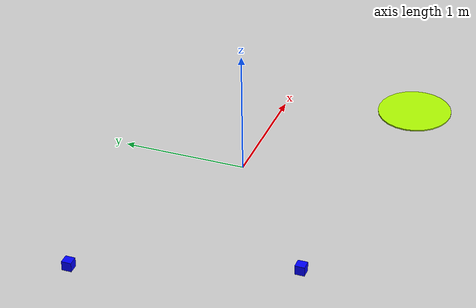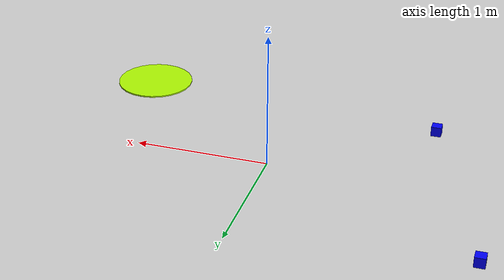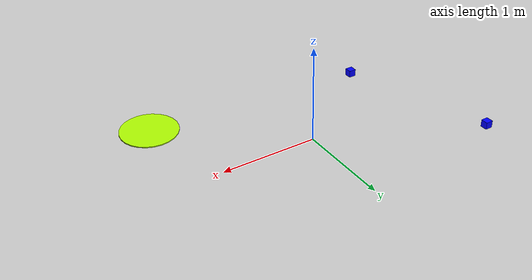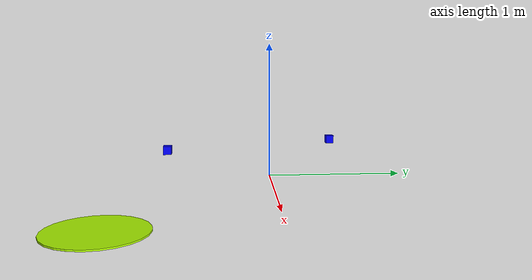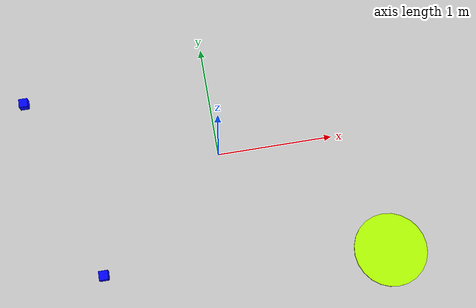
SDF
<?xml version='1.0'?>
<sdf version='1.7'>
  <model name='fg3'>
    <link name='link_0'>
      <inertial>
        <mass>1</mass>
        <inertia>
          <ixx>0.166667</ixx>
          <ixy>0</ixy>
          <ixz>0</ixz>
          <iyy>0.166667</iyy>
          <iyz>0</iyz>
          <izz>0.166667</izz>
        </inertia>
        <pose>0 0 0 0 -0 0</pose>
      </inertial>
      <pose>-1.09355 -0.868762 0.010054 0 -0 0</pose>
      <gravity>1</gravity>
      <self_collide>0</self_collide>
      <kinematic>0</kinematic>
      <enable_wind>0</enable_wind>
      <visual name='visual'>
        <pose>0 0 0 0 -0 0</pose>
        <geometry>
          <box>
            <size>0.0762 0.0762 0.0762</size>
          </box>
        </geometry>
        <material>
          <lighting>1</lighting>
          <script>
            <uri>file://media/materials/scripts/gazebo.material</uri>
            <name>Gazebo/Grey</name>
          </script>
          <shader type='pixel'>
            <normal_map>__default__</normal_map>
          </shader>
          <ambient>0 0 1 1</ambient>
          <diffuse>0 0 1 1</diffuse>
          <specular>0 0 1 1</specular>
          <emissive>0 0 0 1</emissive>
        </material>
        <transparency>0</transparency>
        <cast_shadows>1</cast_shadows>
      </visual>
      <collision name='collision'>
        <laser_retro>0</laser_retro>
        <max_contacts>10</max_contacts>
        <pose>0 0 0 0 -0 0</pose>
        <geometry>
          <box>
            <size>0.0762 0.0762 0.0762</size>
          </box>
        </geometry>
        <surface>
          <friction>
            <ode>
              <mu>1</mu>
              <mu2>1</mu2>
              <fdir1>0 0 0</fdir1>
              <slip1>0</slip1>
              <slip2>0</slip2>
            </ode>
            <torsional>
              <coefficient>1</coefficient>
              <patch_radius>0</patch_radius>
              <surface_radius>0</surface_radius>
              <use_patch_radius>1</use_patch_radius>
              <ode>
                <slip>0</slip>
              </ode>
            </torsional>
          </friction>
          <bounce>
            <restitution_coefficient>0</restitution_coefficient>
            <threshold>1e+06</threshold>
          </bounce>
          <contact>
            <collide_without_contact>0</collide_without_contact>
            <collide_without_contact_bitmask>1</collide_without_contact_bitmask>
            <collide_bitmask>1</collide_bitmask>
            <ode>
              <soft_cfm>0</soft_cfm>
              <soft_erp>0.2</soft_erp>
              <kp>1e+13</kp>
              <kd>1</kd>
              <max_vel>0.01</max_vel>
              <min_depth>0</min_depth>
            </ode>
            <bullet>
              <split_impulse>1</split_impulse>
              <split_impulse_penetration_threshold>-0.01</split_impulse_penetration_threshold>
              <soft_cfm>0</soft_cfm>
              <soft_erp>0.2</soft_erp>
              <kp>1e+13</kp>
              <kd>1</kd>
            </bullet>
          </contact>
        </surface>
      </collision>
    </link>
    <link name='link_0_clone'>
      <inertial>
        <mass>1</mass>
        <inertia>
          <ixx>0.166667</ixx>
          <ixy>0</ixy>
          <ixz>0</ixz>
          <iyy>0.166667</iyy>
          <iyz>0</iyz>
          <izz>0.166667</izz>
        </inertia>
        <pose>0 0 0 0 -0 0</pose>
      </inertial>
      <pose>-1.62214 0.742998 0.010054 0 -0 0</pose>
      <gravity>1</gravity>
      <self_collide>0</self_collide>
      <kinematic>0</kinematic>
      <enable_wind>0</enable_wind>
      <visual name='visual'>
        <pose>0 0 0 0 -0 0</pose>
        <geometry>
          <box>
            <size>0.0762 0.0762 0.0762</size>
          </box>
        </geometry>
        <material>
          <lighting>1</lighting>
          <script>
            <uri>file://media/materials/scripts/gazebo.material</uri>
            <name>Gazebo/Grey</name>
          </script>
          <shader type='pixel'>
            <normal_map>__default__</normal_map>
          </shader>
          <ambient>0 0 1 1</ambient>
          <diffuse>0 0 1 1</diffuse>
          <specular>0 0 1 1</specular>
          <emissive>0 0 0 1</emissive>
        </material>
        <transparency>0</transparency>
        <cast_shadows>1</cast_shadows>
      </visual>
      <collision name='collision'>
        <laser_retro>0</laser_retro>
        <max_contacts>10</max_contacts>
        <pose>0 0 0 0 -0 0</pose>
        <geometry>
          <box>
            <size>0.0762 0.0762 0.0762</size>
          </box>
        </geometry>
        <surface>
          <friction>
            <ode>
              <mu>1</mu>
              <mu2>1</mu2>
              <fdir1>0 0 0</fdir1>
              <slip1>0</slip1>
              <slip2>0</slip2>
            </ode>
            <torsional>
              <coefficient>1</coefficient>
              <patch_radius>0</patch_radius>
              <surface_radius>0</surface_radius>
              <use_patch_radius>1</use_patch_radius>
              <ode>
                <slip>0</slip>
              </ode>
            </torsional>
          </friction>
          <bounce>
            <restitution_coefficient>0</restitution_coefficient>
            <threshold>1e+06</threshold>
          </bounce>
          <contact>
            <collide_without_contact>0</collide_without_contact>
            <collide_without_contact_bitmask>1</collide_without_contact_bitmask>
            <collide_bitmask>1</collide_bitmask>
            <ode>
              <soft_cfm>0</soft_cfm>
              <soft_erp>0.2</soft_erp>
              <kp>1e+13</kp>
              <kd>1</kd>
              <max_vel>0.01</max_vel>
              <min_depth>0</min_depth>
            </ode>
            <bullet>
              <split_impulse>1</split_impulse>
              <split_impulse_penetration_threshold>-0.01</split_impulse_penetration_threshold>
              <soft_cfm>0</soft_cfm>
              <soft_erp>0.2</soft_erp>
              <kp>1e+13</kp>
              <kd>1</kd>
            </bullet>
          </contact>
        </surface>
      </collision>
    </link>
    <link name='link_1'>
      <inertial>
        <mass>10</mass>
        <inertia>
          <ixx>1.66667</ixx>
          <ixy>0</ixy>
          <ixz>0</ixz>
          <iyy>1.66667</iyy>
          <iyz>0</iyz>
          <izz>1.66667</izz>
        </inertia>
        <pose>0 0 0 0 -0 0</pose>
      </inertial>
      <pose>1.43359 1.16783 -0.012063 0 -0 0.765</pose>
      <gravity>1</gravity>
      <self_collide>0</self_collide>
      <kinematic>0</kinematic>
      <enable_wind>0</enable_wind>
      <visual name='visual'>
        <pose>0 0 0 0 -0 0</pose>
        <geometry>
          <box>
            <size>0 0 0</size>
          </box>
        </geometry>
        <material>
          <lighting>1</lighting>
          <script>
            <uri>file://media/materials/scripts/gazebo.material</uri>
            <name>Gazebo/Grey</name>
          </script>
          <shader type='pixel'>
            <normal_map>__default__</normal_map>
          </shader>
          <ambient>0 0.3 0.3 1</ambient>
          <diffuse>1 0.7 0 1</diffuse>
          <specular>1 0.7 0 1</specular>
          <emissive>1 0.7 0 1</emissive>
        </material>
        <transparency>0</transparency>
        <cast_shadows>1</cast_shadows>
      </visual>
      <collision name='collision'>
        <laser_retro>0</laser_retro>
        <max_contacts>10</max_contacts>
        <pose>0 0 0 0 -0 0</pose>
        <geometry>
          <box>
            <size>0.6096 0.6096 0.01</size>
          </box>
        </geometry>
        <surface>
          <friction>
            <ode>
              <mu>1</mu>
              <mu2>1</mu2>
              <fdir1>0 0 0</fdir1>
              <slip1>0</slip1>
              <slip2>0</slip2>
            </ode>
            <torsional>
              <coefficient>1</coefficient>
              <patch_radius>0</patch_radius>
              <surface_radius>0</surface_radius>
              <use_patch_radius>1</use_patch_radius>
              <ode>
                <slip>0</slip>
              </ode>
            </torsional>
          </friction>
          <bounce>
            <restitution_coefficient>0</restitution_coefficient>
            <threshold>1e+06</threshold>
          </bounce>
          <contact>
            <collide_without_contact>0</collide_without_contact>
            <collide_without_contact_bitmask>1</collide_without_contact_bitmask>
            <collide_bitmask>1</collide_bitmask>
            <ode>
              <soft_cfm>0</soft_cfm>
              <soft_erp>0.2</soft_erp>
              <kp>1e+13</kp>
              <kd>1</kd>
              <max_vel>0.01</max_vel>
              <min_depth>0</min_depth>
            </ode>
            <bullet>
              <split_impulse>1</split_impulse>
              <split_impulse_penetration_threshold>-0.01</split_impulse_penetration_threshold>
              <soft_cfm>0</soft_cfm>
              <soft_erp>0.2</soft_erp>
              <kp>1e+13</kp>
              <kd>1</kd>
            </bullet>
          </contact>
        </surface>
      </collision>
    </link>
    <link name='link_2'>
      <inertial>
        <mass>5</mass>
        <inertia>
          <ixx>0.729167</ixx>
          <ixy>0</ixy>
          <ixz>0</ixz>
          <iyy>0.729167</iyy>
          <iyz>0</iyz>
          <izz>0.625</izz>
        </inertia>
        <pose>0 0 0 0 -0 0</pose>
      </inertial>
      <pose>1.2821 -1.04206 -0.008046 0 -0 0</pose>
      <gravity>1</gravity>
      <self_collide>0</self_collide>
      <kinematic>0</kinematic>
      <enable_wind>0</enable_wind>
      <visual name='visual'>
        <pose>0 0 0 0 -0 0</pose>
        <geometry>
          <cylinder>
            <radius>0.3048</radius>
            <length>0.01</length>
          </cylinder>
        </geometry>
        <material>
          <lighting>1</lighting>
          <script>
            <uri>file://media/materials/scripts/gazebo.material</uri>
            <name>Gazebo/Grey</name>
          </script>
          <shader type='pixel'>
            <normal_map>__default__</normal_map>
          </shader>
          <ambient>0 1 0 1</ambient>
          <diffuse>0.7 1 0 1</diffuse>
          <specular>0 1 0 1</specular>
          <emissive>0 1 0 1</emissive>
        </material>
        <transparency>0</transparency>
        <cast_shadows>1</cast_shadows>
      </visual>
      <collision name='collision'>
        <laser_retro>0</laser_retro>
        <max_contacts>10</max_contacts>
        <pose>0 0 0 0 -0 0</pose>
        <geometry>
          <cylinder>
            <radius>0.3048</radius>
            <length>0.01</length>
          </cylinder>
        </geometry>
        <surface>
          <friction>
            <ode>
              <mu>1</mu>
              <mu2>1</mu2>
              <fdir1>0 0 0</fdir1>
              <slip1>0</slip1>
              <slip2>0</slip2>
            </ode>
            <torsional>
              <coefficient>1</coefficient>
              <patch_radius>0</patch_radius>
              <surface_radius>0</surface_radius>
              <use_patch_radius>1</use_patch_radius>
              <ode>
                <slip>0</slip>
              </ode>
            </torsional>
          </friction>
          <bounce>
            <restitution_coefficient>0</restitution_coefficient>
            <threshold>1e+06</threshold>
          </bounce>
          <contact>
            <collide_without_contact>0</collide_without_contact>
            <collide_without_contact_bitmask>1</collide_without_contact_bitmask>
            <collide_bitmask>1</collide_bitmask>
            <ode>
              <soft_cfm>0</soft_cfm>
              <soft_erp>0.2</soft_erp>
              <kp>1e+13</kp>
              <kd>1</kd>
              <max_vel>0.01</max_vel>
              <min_depth>0</min_depth>
            </ode>
            <bullet>
              <split_impulse>1</split_impulse>
              <split_impulse_penetration_threshold>-0.01</split_impulse_penetration_threshold>
              <soft_cfm>0</soft_cfm>
              <soft_erp>0.2</soft_erp>
              <kp>1e+13</kp>
              <kd>1</kd>
            </bullet>
          </contact>
        </surface>
      </collision>
    </link>
    <static>0</static>
    <allow_auto_disable>1</allow_auto_disable>
  </model>
</sdf>
